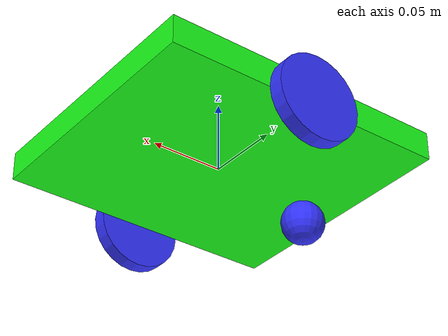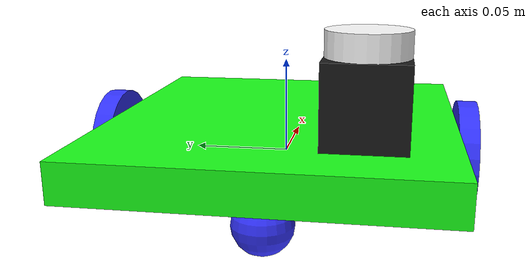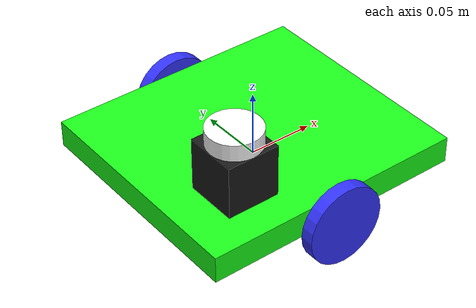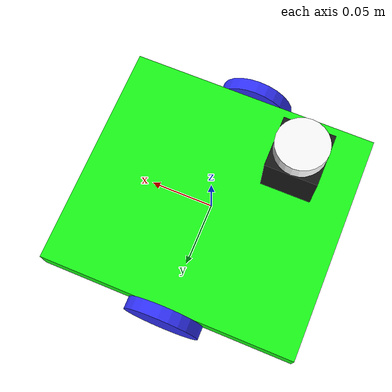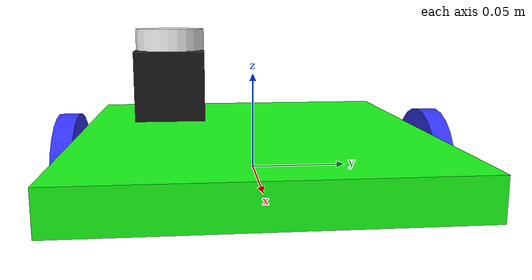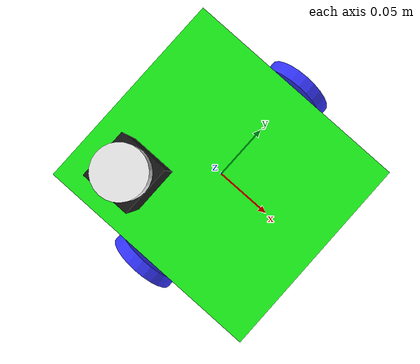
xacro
<?xml version="1.0"?>
<robot xmlns:xacro="http://www.ros.org/wiki/xacro" name="robot" >

    <xacro:include filename="robot_include.xacro" />

    <xacro:include filename="robot_description.xacro" />

    <!-- Lidar -->

    <xacro:include filename="lidar.xacro" />

    <!-- For Gazebo -->

    <xacro:include filename="robot_gazebo.xacro" />

    <xacro:include filename="gazebo_control.xacro" />

</robot>

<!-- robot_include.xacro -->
<robot xmlns:xacro="http://www.ros.org/wiki/xacro" >

    <!-- This file is not a robot in and of itself, it just contains some useful tags that could be included in any robot -->

    <!-- Specify some colours -->

    <material name="grey">
        <color rgba="0.1 0.1 0.1 1" />
    </material>

    <material name="white">
        <color rgba="1 1 1 1" />
    </material>

    <material name="orange">
        <color rgba="1 0.3 0.1 1" />
    </material>

    <material name="blue">
        <color rgba="0.2 0.2 1 1" />
    </material>

    <material name="green">
        <color rgba="0.1 1 0.1 1" />
    </material>

    <xacro:macro name="inertial_sphere" params="mass radius *origin">
        <inertial>
            <xacro:insert_block name="origin" />
            <mass value="${mass}" />
            <inertia ixx="${(2/5) * mass * (radius*radius)}" ixy="0.0" ixz="0.0"
                    iyy="${(2/5) * mass * (radius*radius)}" iyz="0.0"
                    izz="${(2/5) * mass * (radius*radius)}" />
        </inertial>
    </xacro:macro>

    <xacro:macro name="inertial_box" params="mass x y z *origin">
        <inertial>
            <xacro:insert_block name="origin" />
            <mass value="${mass}" />
            <inertia ixx="${(1/12) * mass * (y*y+z*z)}" ixy="0.0" ixz="0.0"
                    iyy="${(1/12) * mass * (x*x+z*z)}" iyz="0.0"
                    izz="${(1/12) * mass * (x*x+y*y)}" />
        </inertial>
    </xacro:macro>

    <xacro:macro name="inertial_cylinder" params="mass length radius *origin">
        <inertial>
            <xacro:insert_block name="origin" />
            <mass value="${mass}" />
            <inertia ixx="${(1/12) * mass * (3*radius*radius + length*length)}" ixy="0.0" ixz="0.0"
                    iyy="${(1/12) * mass * (3*radius*radius + length*length)}" iyz="0.0"
                    izz="${(1/2) * mass * (radius*radius)}" />
        </inertial>
    </xacro:macro>

</robot>

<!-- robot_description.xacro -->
<robot xmlns:xacro="http://www.ros.org/wiki/xacro">

    <!-- Root -->

    <link name="base_link">
    </link>

    <!-- Base footprint -->

    <joint name="base_footprint_joint" type="fixed">
        <parent link="base_link" />
        <child link="base_footprint_link" />
        <origin xyz="0 0 0" rpy="0 0 0" />
    </joint>

    <link name="base_footprint_link">
    </link>

    <!-- Base -->

    <joint name="platform_joint" type="fixed">
        <parent link="base_link" />
        <child link="platform_link" />
        <origin xyz="0 0 0" />
    </joint>

    <link name="platform_link">
        <visual>
            <origin xyz="0 0 0.01" rpy="0 0 0" />
            <geometry>
                <box size="0.2 0.18 0.02" />
            </geometry>
            <material name="green" />
        </visual>
        <collision>
            <origin xyz="0 0 0.01" rpy="0 0 0" />
            <geometry>
                <box size="0.2 0.18 0.02" />
            </geometry>
        </collision>
        <xacro:inertial_box mass="0.5" x="0.2" y="0.18" z="0.02">
            <origin xyz="0 0 0.01" rpy="0 0 0" />
        </xacro:inertial_box>
    </link>

<!-- Left wheel-->

    <xacro:property name="wheel_length" value="0.01" />
    <xacro:property name="wheel_radius" value="0.03" />
    <xacro:property name="wheel_damping" value="0.0002" />
    <xacro:property name="wheel_friction" value="0.005" />

    <joint name="wheelL_joint" type="continuous">
        <origin xyz="0 0.095 0" rpy="-${pi/2} 0 0" />
        <parent link="base_link" />
        <child link="wheelL_link" />
        <axis xyz="0 0 1"/>
        <dynamics damping="${wheel_damping}" friction="${wheel_friction}" />
    </joint>

    <link name="wheelL_link">
        <visual>
            <origin xyz="0 0 0" rpy="0 0 0" />
            <geometry>
                <cylinder length="${wheel_length}" radius="${wheel_radius}" />
            </geometry>
            <material name="blue" />
        </visual>
        <collision>
            <origin xyz="0 0 0" rpy="0 0 0" />
            <geometry>
                <cylinder length="${wheel_length}" radius="${wheel_radius}" />
            </geometry>
        </collision>
        <xacro:inertial_cylinder mass="0.1" length="${wheel_length}" radius="${wheel_radius}">
            <origin xyz="0 0 0" rpy="0 0 0" />
        </xacro:inertial_cylinder>
    </link>

<!-- Right wheel -->

    <joint name="wheelR_joint" type="continuous">
        <origin xyz="0 -0.095 0" rpy="${pi/2} 0 0" />
        <parent link="base_link" />
        <child link="wheelR_link" />
        <axis xyz="0 0 -1" />
       <dynamics damping="${wheel_damping}" friction="${wheel_friction}" />
    </joint>

    <link name="wheelR_link">
        <visual>
            <origin xyz="0 0 0" rpy="0 0 0" />
            <geometry>
                <cylinder length="${wheel_length}" radius="${wheel_radius}" />
            </geometry>
            <material name="blue" />
        </visual>
        <collision>
            <origin xyz="0 0 0" rpy="0 0 0" />
            <geometry>
                <cylinder length="${wheel_length}" radius="${wheel_radius}" />
            </geometry>
        </collision>
        <xacro:inertial_cylinder mass="0.1" length="${wheel_length}" radius="${wheel_radius}">
            <origin xyz="0 0 0" rpy="0 0 0" />
        </xacro:inertial_cylinder>
    </link>

<!-- Back wheel -->

    <xacro:property name="back_wheel_radius" value="0.015" />

    <joint name="back_wheel_joint" type="continuous">
        <origin xyz="-0.07 0 -0.015" rpy="0 0 0"/>
        <parent link="base_link"/>
        <child link="back_wheel_link"/>
        <axis xyz="0 1 1"/>
        <dynamics damping="${wheel_damping/2}" friction="${wheel_friction/2}" />
    </joint>

    <link name="back_wheel_link">
        <visual>
            <origin xyz="0 0 0" rpy="0 0 0" />
            <geometry>
                <sphere radius="${back_wheel_radius}" />
            </geometry>
            <material name="blue" />
        </visual>
        <collision>
            <origin xyz="0 0 0" rpy="0 0 0" />
            <geometry>
                <sphere radius="${back_wheel_radius}" />
            </geometry>
        </collision>
        <xacro:inertial_sphere mass="0.05" radius="${back_wheel_radius}">
            <origin xyz="0 0 0" rpy="0 0 0" />
        </xacro:inertial_sphere>
    </link>
</robot>

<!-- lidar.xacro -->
<robot xmlns:xacro="http://www.ros.org/wiki/xacro" >

    <joint name="lidar_joint" type="fixed">
        <origin xyz="-0.05 -0.045 0.02" rpy="0 0 0"/>
        <parent link="base_link"/>
        <child link="lidar_link"/>
    </joint>

    <link name="lidar_link">
        <visual>
            <origin xyz="0 0 0.02" rpy="0 0 0"/>
            <geometry>
                <box size="0.04 0.04 0.04" />
            </geometry>
            <material name="grey" />
        </visual>
        <visual>
            <origin xyz="0 0 0.045" rpy="0 0 0"/>
            <geometry>
                <cylinder length="0.015" radius="0.02" />
            </geometry>
            <material name="white" />
        </visual>
        <collision>
            <origin xyz="0 0 0.0275" rpy="0 0 0"/>
            <geometry>
                <box size="0.04 0.04 0.055" />
            </geometry>
        </collision>
        <xacro:inertial_box mass="0.1" x="0.04" y="0.04" z="0.055">
            <origin xyz="0 0 0.0275" rpy="0 0 0"/>
        </xacro:inertial_box>
    </link>

    <gazebo reference="lidar_link">
        <sensor name="lidar" type="ray">
            <pose> 0 0 0.045 0 0 0 </pose>
            <visualize>true</visualize>
            <update_rate>50</update_rate>
            <ray>
                <scan>
                    <horizontal>
                        <samples>240</samples>
                        <resolution>1</resolution>
                        <min_angle>-3.14</min_angle>
                        <max_angle>3.14</max_angle>
                    </horizontal>
                </scan>
                <range>
                    <min>0.1</min>
                    <max>10</max>
                    <resolution>0.01</resolution>
                </range>
            </ray>
            <plugin name="laser_controller" filename="libgazebo_ros_ray_sensor.so">
                <ros>
                    <argument>--ros-args --remap ~/out:=scan</argument>
                </ros>
                <output_type>sensor_msgs/LaserScan</output_type>
                <frame_name>lidar_link</frame_name>
            </plugin>
        </sensor>
    </gazebo>

</robot>
